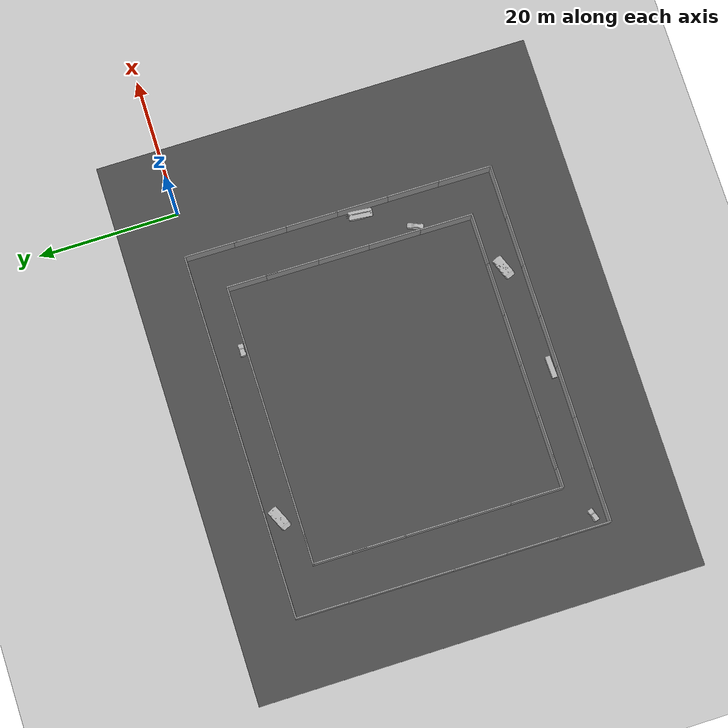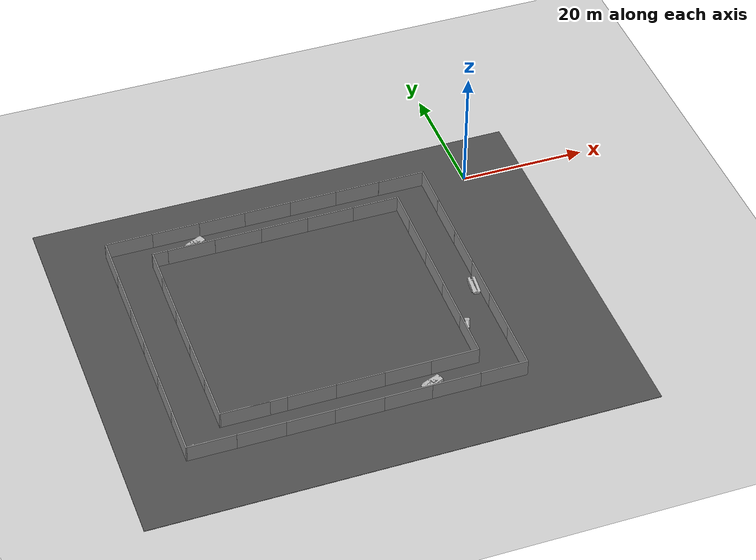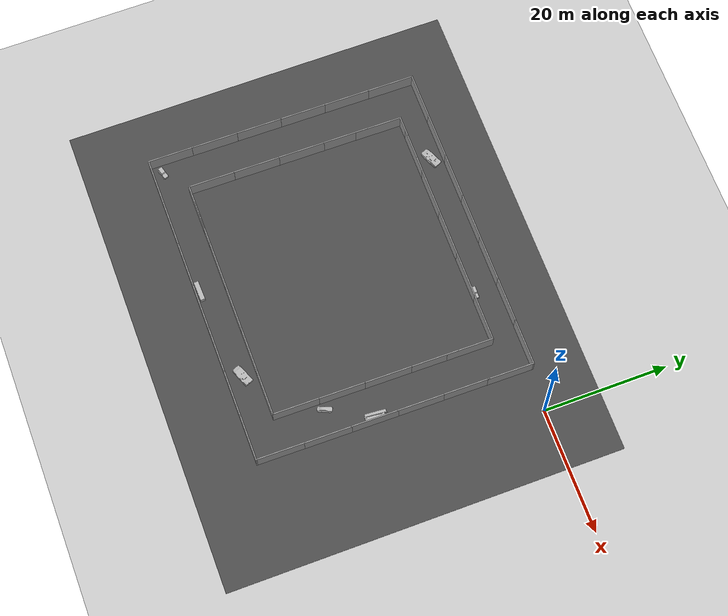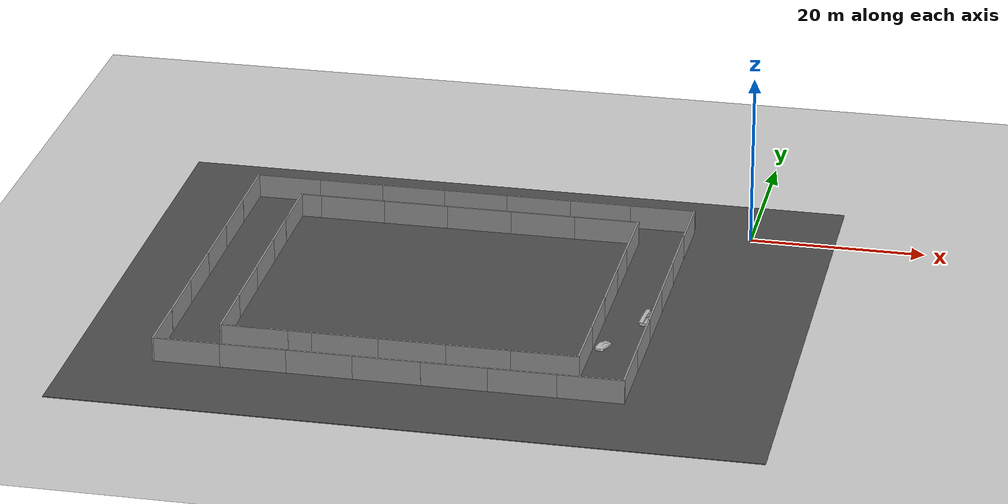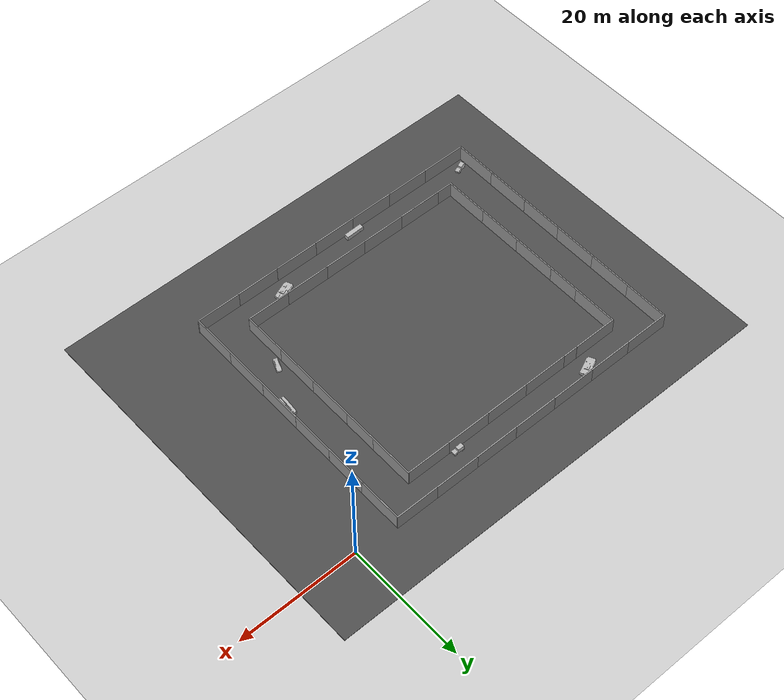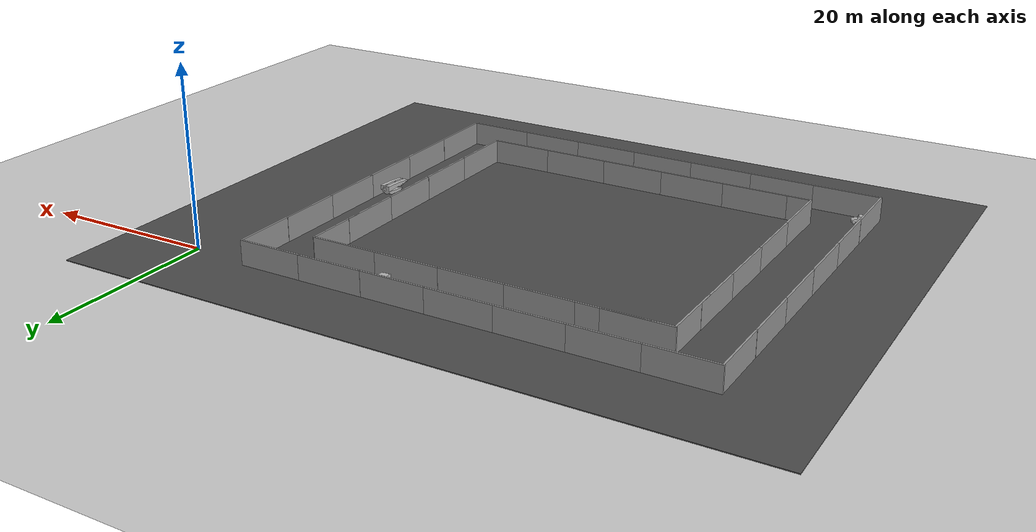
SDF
<sdf version="1.6">
 <world name="default">
  <light name="sun" type="directional">
   <pose>0 0 10 0 -0 0</pose>
   <diffuse>0.8 0.8 0.8 1</diffuse>
   <specular>0.2 0.2 0.2 1</specular>
   <attenuation>
    <range>1000</range>
    <constant>0.9</constant>
    <linear>0.01</linear>
    <quadratic>0.001</quadratic>
   </attenuation>
   <direction>-0.5 0.1 -0.9</direction>
  </light>
  <model name="ground_plane">
   <static>1</static>
   <link name="link">
    <collision name="collision">
     <geometry><plane><normal>0 0 1</normal><size>100 100</size></plane></geometry>
     <surface>
      <contact><collide_bitmask>65535</collide_bitmask></contact>
      <friction><ode><mu>100</mu><mu2>50</mu2></ode></friction>
     </surface>
    </collision>
    <visual name="visual">
     <cast_shadows>0</cast_shadows>
     <geometry><plane><normal>0 0 1</normal><size>100 100</size></plane></geometry>
     <material>
      <script><uri>file://media/materials/scripts/gazebo.material</uri><name>Gazebo/Grey</name></script>
     </material>
    </visual>
   </link>
  </model>
  <gravity>0 0 -9.8</gravity>
  <magnetic_field>6e-06 2.3e-05 -4.2e-05</magnetic_field>
  <atmosphere type="adiabatic"/>
  <physics name="default_physics" default="0" type="ode">
   <max_step_size>0.001</max_step_size>
   <real_time_factor>1</real_time_factor>
   <real_time_update_rate>1000</real_time_update_rate>
  </physics>
  <scene><ambient>0.4 0.4 0.4 1</ambient><background>0.7 0.7 0.7 1</background><shadows>1</shadows></scene>
  <audio><device>default</device></audio>
  <spherical_coordinates>
   <surface_model>EARTH_WGS84</surface_model>
   <latitude_deg>0</latitude_deg>
   <longitude_deg>0</longitude_deg>
   <elevation>0</elevation>
   <heading_deg>0</heading_deg>
  </spherical_coordinates>
  <light name="sun" type="directional">
   <pose>0 0 10 0 -0 0</pose>
   <diffuse>0.8 0.8 0.8 1</diffuse>
   <specular>0.2 0.2 0.2 1</specular>
   <attenuation>
    <range>1000</range>
    <constant>0.9</constant>
    <linear>0.01</linear>
    <quadratic>0.001</quadratic>
   </attenuation>
   <direction>-0.5 0.1 -0.9</direction>
  </light>
  <light name="sun" type="directional">
   <pose>0 0 10 0 -0 0</pose>
   <diffuse>0.8 0.8 0.8 1</diffuse>
   <specular>0.2 0.2 0.2 1</specular>
   <attenuation>
    <range>1000</range>
    <constant>0.9</constant>
    <linear>0.01</linear>
    <quadratic>0.001</quadratic>
   </attenuation>
   <direction>-0.5 0.1 -0.9</direction>
  </light>
  <physics name="default_physics" default="0" type="ode">
   <ode>
    <solver>
     <type>quick</type>
     <iters>10</iters>
     <sor>1</sor>
     <use_dynamic_moi_rescaling>0</use_dynamic_moi_rescaling>
    </solver>
    <constraints>
     <cfm>0</cfm>
     <erp>0.2</erp>
     <contact_max_correcting_vel>100</contact_max_correcting_vel>
     <contact_surface_layer>0.001</contact_surface_layer>
    </constraints>
   </ode>
   <max_step_size>0.004</max_step_size>
   <real_time_factor>1</real_time_factor>
   <real_time_update_rate>250</real_time_update_rate>
  </physics>
  <model name="grey_wall_clone_6_clone_8">
   <static>1</static>
   <link name="link">
    <pose>0 0 1.4 0 -0 0</pose>
    <collision name="collision"><geometry><box><size>7.5 0.2 2.8</size></box></geometry></collision>
    <visual name="visual">
     <cast_shadows>0</cast_shadows>
     <geometry><box><size>7.5 0.2 2.8</size></box></geometry>
     <material>
      <script>
       <uri>model://grey_wall/materials/scripts</uri>
       <uri>model://grey_wall/materials/textures</uri>
       <name>vrc/grey_wall</name>
      </script>
     </material>
    </visual>
   </link>
   <pose>-10.4256 0.797416 0 0 -0 0</pose>
  </model>
  <model name="asphalt_plane">
   <static>1</static>
   <link name="link">
    <collision name="collision"><geometry><box><size>77.647 62.8353 0.1</size></box></geometry></collision>
    <visual name="visual">
     <cast_shadows>0</cast_shadows>
     <geometry><box><size>77.647 62.8353 0.1</size></box></geometry>
     <material>
      <script>
       <uri>model://asphalt_plane/materials/scripts</uri>
       <uri>model://asphalt_plane/materials/textures</uri>
       <name>vrc/asphalt</name>
      </script>
     </material>
    </visual>
   </link>
   <pose>-29.1908 -22.4204 0 0 -0 0</pose>
  </model>
  <model name="grey_wall_clone_6_clone_8_clone">
   <static>1</static>
   <link name="link">
    <pose>0 0 1.4 0 -0 0</pose>
    <collision name="collision"><geometry><box><size>7.5 0.2 2.8</size></box></geometry></collision>
    <visual name="visual">
     <cast_shadows>0</cast_shadows>
     <geometry><box><size>7.5 0.2 2.8</size></box></geometry>
     <material>
      <script>
       <uri>model://grey_wall/materials/scripts</uri>
       <uri>model://grey_wall/materials/textures</uri>
       <name>vrc/grey_wall</name>
      </script>
     </material>
    </visual>
   </link>
   <pose>-17.6869 0.815596 0 0 -0 0</pose>
  </model>
  <model name="grey_wall_clone_6_clone_8_clone_0">
   <static>1</static>
   <link name="link">
    <pose>0 0 1.4 0 -0 0</pose>
    <collision name="collision"><geometry><box><size>7.5 0.2 2.8</size></box></geometry></collision>
    <visual name="visual">
     <cast_shadows>0</cast_shadows>
     <geometry><box><size>7.5 0.2 2.8</size></box></geometry>
     <material>
      <script>
       <uri>model://grey_wall/materials/scripts</uri>
       <uri>model://grey_wall/materials/textures</uri>
       <name>vrc/grey_wall</name>
      </script>
     </material>
    </visual>
   </link>
   <pose>-25.0194 0.805602 0 0 -0 0</pose>
  </model>
  <model name="grey_wall_clone_6_clone_8_clone_1">
   <static>1</static>
   <link name="link">
    <pose>0 0 1.4 0 -0 0</pose>
    <collision name="collision"><geometry><box><size>7.5 0.2 2.8</size></box></geometry></collision>
    <visual name="visual">
     <cast_shadows>0</cast_shadows>
     <geometry><box><size>7.5 0.2 2.8</size></box></geometry>
     <material>
      <script>
       <uri>model://grey_wall/materials/scripts</uri>
       <uri>model://grey_wall/materials/textures</uri>
       <name>vrc/grey_wall</name>
      </script>
     </material>
    </visual>
   </link>
   <pose>-32.4838 0.814762 0 0 -0 0</pose>
  </model>
  <model name="grey_wall_clone_6_clone_8_clone_2">
   <static>1</static>
   <link name="link">
    <pose>0 0 1.4 0 -0 0</pose>
    <collision name="collision"><geometry><box><size>7.5 0.2 2.8</size></box></geometry></collision>
    <visual name="visual">
     <cast_shadows>0</cast_shadows>
     <geometry><box><size>7.5 0.2 2.8</size></box></geometry>
     <material>
      <script>
       <uri>model://grey_wall/materials/scripts</uri>
       <uri>model://grey_wall/materials/textures</uri>
       <name>vrc/grey_wall</name>
      </script>
     </material>
    </visual>
   </link>
   <pose>-39.923 0.810789 0 0 -0 0</pose>
  </model>
  <model name="grey_wall_clone_6_clone_8_clone_3">
   <static>1</static>
   <link name="link">
    <pose>0 0 1.4 0 -0 0</pose>
    <collision name="collision"><geometry><box><size>7.5 0.2 2.8</size></box></geometry></collision>
    <visual name="visual">
     <cast_shadows>0</cast_shadows>
     <geometry><box><size>7.5 0.2 2.8</size></box></geometry>
     <material>
      <script>
       <uri>model://grey_wall/materials/scripts</uri>
       <uri>model://grey_wall/materials/textures</uri>
       <name>vrc/grey_wall</name>
      </script>
     </material>
    </visual>
   </link>
   <pose>-47.2608 0.80925 0 0 -0 0</pose>
  </model>
  <model name="grey_wall_clone_6_clone_8_clone_4">
   <static>1</static>
   <link name="link">
    <pose>0 0 1.4 0 -0 0</pose>
    <collision name="collision"><geometry><box><size>7.5 0.2 2.8</size></box></geometry></collision>
    <visual name="visual">
     <cast_shadows>0</cast_shadows>
     <geometry><box><size>7.5 0.2 2.8</size></box></geometry>
     <material>
      <script>
       <uri>model://grey_wall/materials/scripts</uri>
       <uri>model://grey_wall/materials/textures</uri>
       <name>vrc/grey_wall</name>
      </script>
     </material>
    </visual>
   </link>
   <pose>-54.7381 0.815169 0 0 -0 0</pose>
  </model>
  <model name="grey_wall_clone_6_clone_8_clone_5">
   <static>1</static>
   <link name="link">
    <pose>0 0 1.4 0 -0 0</pose>
    <collision name="collision"><geometry><box><size>7.5 0.2 2.8</size></box></geometry></collision>
    <visual name="visual">
     <cast_shadows>0</cast_shadows>
     <geometry><box><size>7.5 0.2 2.8</size></box></geometry>
     <material>
      <script>
       <uri>model://grey_wall/materials/scripts</uri>
       <uri>model://grey_wall/materials/textures</uri>
       <name>vrc/grey_wall</name>
      </script>
     </material>
    </visual>
   </link>
   <pose>-6.80481 -2.85443 0 0 -0 1.56305</pose>
  </model>
  <model name="grey_wall_clone_6_clone_8_clone_5_clone">
   <static>1</static>
   <link name="link">
    <pose>0 0 1.4 0 -0 0</pose>
    <collision name="collision"><geometry><box><size>7.5 0.2 2.8</size></box></geometry></collision>
    <visual name="visual">
     <cast_shadows>0</cast_shadows>
     <geometry><box><size>7.5 0.2 2.8</size></box></geometry>
     <material>
      <script>
       <uri>model://grey_wall/materials/scripts</uri>
       <uri>model://grey_wall/materials/textures</uri>
       <name>vrc/grey_wall</name>
      </script>
     </material>
    </visual>
   </link>
   <pose>-6.87872 -9.95686 0 0 -0 1.56305</pose>
  </model>
  <model name="grey_wall_clone_6_clone_8_clone_5_clone_0">
   <static>1</static>
   <link name="link">
    <pose>0 0 1.4 0 -0 0</pose>
    <collision name="collision"><geometry><box><size>7.5 0.2 2.8</size></box></geometry></collision>
    <visual name="visual">
     <cast_shadows>0</cast_shadows>
     <geometry><box><size>7.5 0.2 2.8</size></box></geometry>
     <material>
      <script>
       <uri>model://grey_wall/materials/scripts</uri>
       <uri>model://grey_wall/materials/textures</uri>
       <name>vrc/grey_wall</name>
      </script>
     </material>
    </visual>
   </link>
   <pose>-6.9205 -17.348 0 0 -0 1.56305</pose>
  </model>
  <model name="grey_wall_clone_6_clone_8_clone_5_clone_1">
   <static>1</static>
   <link name="link">
    <pose>0 0 1.4 0 -0 0</pose>
    <collision name="collision"><geometry><box><size>7.5 0.2 2.8</size></box></geometry></collision>
    <visual name="visual">
     <cast_shadows>0</cast_shadows>
     <geometry><box><size>7.5 0.2 2.8</size></box></geometry>
     <material>
      <script>
       <uri>model://grey_wall/materials/scripts</uri>
       <uri>model://grey_wall/materials/textures</uri>
       <name>vrc/grey_wall</name>
      </script>
     </material>
    </visual>
   </link>
   <pose>-6.97589 -24.6171 0 0 -0 1.56305</pose>
  </model>
  <model name="grey_wall_clone_6_clone_8_clone_5_clone_2">
   <static>1</static>
   <link name="link">
    <pose>0 0 1.4 0 -0 0</pose>
    <collision name="collision"><geometry><box><size>7.5 0.2 2.8</size></box></geometry></collision>
    <visual name="visual">
     <cast_shadows>0</cast_shadows>
     <geometry><box><size>7.5 0.2 2.8</size></box></geometry>
     <material>
      <script>
       <uri>model://grey_wall/materials/scripts</uri>
       <uri>model://grey_wall/materials/textures</uri>
       <name>vrc/grey_wall</name>
      </script>
     </material>
    </visual>
   </link>
   <pose>-7.02281 -32.0062 0 0 -0 1.56305</pose>
  </model>
  <model name="grey_wall_clone_6_clone_8_clone_5_clone_3">
   <static>1</static>
   <link name="link">
    <pose>0 0 1.4 0 -0 0</pose>
    <collision name="collision"><geometry><box><size>7.5 0.2 2.8</size></box></geometry></collision>
    <visual name="visual">
     <cast_shadows>0</cast_shadows>
     <geometry><box><size>7.5 0.2 2.8</size></box></geometry>
     <material>
      <script>
       <uri>model://grey_wall/materials/scripts</uri>
       <uri>model://grey_wall/materials/textures</uri>
       <name>vrc/grey_wall</name>
      </script>
     </material>
    </visual>
   </link>
   <pose>-7.09384 -39.4607 0 0 -0 1.56305</pose>
  </model>
  <model name="grey_wall_clone_6_clone_8_clone_5_clone_4">
   <static>1</static>
   <link name="link">
    <pose>0 0 1.4 0 -0 0</pose>
    <collision name="collision"><geometry><box><size>7.5 0.2 2.8</size></box></geometry></collision>
    <visual name="visual">
     <cast_shadows>0</cast_shadows>
     <geometry><box><size>7.5 0.2 2.8</size></box></geometry>
     <material>
      <script>
       <uri>model://grey_wall/materials/scripts</uri>
       <uri>model://grey_wall/materials/textures</uri>
       <name>vrc/grey_wall</name>
      </script>
     </material>
    </visual>
   </link>
   <pose>-58.4152 -2.86807 0 0 -0 1.56305</pose>
  </model>
  <model name="grey_wall_clone_6_clone_8_clone_5_clone_5">
   <static>1</static>
   <link name="link">
    <pose>0 0 1.4 0 -0 0</pose>
    <collision name="collision"><geometry><box><size>7.5 0.2 2.8</size></box></geometry></collision>
    <visual name="visual">
     <cast_shadows>0</cast_shadows>
     <geometry><box><size>7.5 0.2 2.8</size></box></geometry>
     <material>
      <script>
       <uri>model://grey_wall/materials/scripts</uri>
       <uri>model://grey_wall/materials/textures</uri>
       <name>vrc/grey_wall</name>
      </script>
     </material>
    </visual>
   </link>
   <pose>-58.4882 -10.223 0 0 -0 1.56305</pose>
  </model>
  <model name="grey_wall_clone_6_clone_8_clone_5_clone_6">
   <static>1</static>
   <link name="link">
    <pose>0 0 1.4 0 -0 0</pose>
    <collision name="collision"><geometry><box><size>7.5 0.2 2.8</size></box></geometry></collision>
    <visual name="visual">
     <cast_shadows>0</cast_shadows>
     <geometry><box><size>7.5 0.2 2.8</size></box></geometry>
     <material>
      <script>
       <uri>model://grey_wall/materials/scripts</uri>
       <uri>model://grey_wall/materials/textures</uri>
       <name>vrc/grey_wall</name>
      </script>
     </material>
    </visual>
   </link>
   <pose>-58.5488 -17.5992 0 0 -0 1.56305</pose>
  </model>
  <model name="grey_wall_clone_6_clone_8_clone_5_clone_7">
   <static>1</static>
   <link name="link">
    <pose>0 0 1.4 0 -0 0</pose>
    <collision name="collision"><geometry><box><size>7.5 0.2 2.8</size></box></geometry></collision>
    <visual name="visual">
     <cast_shadows>0</cast_shadows>
     <geometry><box><size>7.5 0.2 2.8</size></box></geometry>
     <material>
      <script>
       <uri>model://grey_wall/materials/scripts</uri>
       <uri>model://grey_wall/materials/textures</uri>
       <name>vrc/grey_wall</name>
      </script>
     </material>
    </visual>
   </link>
   <pose>-58.6114 -24.9525 0 0 -0 1.56305</pose>
  </model>
  <model name="grey_wall_clone_6_clone_8_clone_5_clone_8">
   <static>1</static>
   <link name="link">
    <pose>0 0 1.4 0 -0 0</pose>
    <collision name="collision"><geometry><box><size>7.5 0.2 2.8</size></box></geometry></collision>
    <visual name="visual">
     <cast_shadows>0</cast_shadows>
     <geometry><box><size>7.5 0.2 2.8</size></box></geometry>
     <material>
      <script>
       <uri>model://grey_wall/materials/scripts</uri>
       <uri>model://grey_wall/materials/textures</uri>
       <name>vrc/grey_wall</name>
      </script>
     </material>
    </visual>
   </link>
   <pose>-58.6615 -32.4003 0 0 -0 1.56305</pose>
  </model>
  <model name="grey_wall_clone_6_clone_8_clone_5_clone_9">
   <static>1</static>
   <link name="link">
    <pose>0 0 1.4 0 -0 0</pose>
    <collision name="collision"><geometry><box><size>7.5 0.2 2.8</size></box></geometry></collision>
    <visual name="visual">
     <cast_shadows>0</cast_shadows>
     <geometry><box><size>7.5 0.2 2.8</size></box></geometry>
     <material>
      <script>
       <uri>model://grey_wall/materials/scripts</uri>
       <uri>model://grey_wall/materials/textures</uri>
       <name>vrc/grey_wall</name>
      </script>
     </material>
    </visual>
   </link>
   <pose>-58.7297 -39.5971 0 0 -0 1.56305</pose>
  </model>
  <model name="grey_wall_clone_6_clone_8_clone_4_clone">
   <static>1</static>
   <link name="link">
    <pose>0 0 1.4 0 -0 0</pose>
    <collision name="collision"><geometry><box><size>7.5 0.2 2.8</size></box></geometry></collision>
    <visual name="visual">
     <cast_shadows>0</cast_shadows>
     <geometry><box><size>7.5 0.2 2.8</size></box></geometry>
     <material>
      <script>
       <uri>model://grey_wall/materials/scripts</uri>
       <uri>model://grey_wall/materials/textures</uri>
       <name>vrc/grey_wall</name>
      </script>
     </material>
    </visual>
   </link>
   <pose>-54.9361 -43.2608 0 0 -0 0</pose>
  </model>
  <model name="grey_wall_clone_6_clone_8_clone_4_clone_0">
   <static>1</static>
   <link name="link">
    <pose>0 0 1.4 0 -0 0</pose>
    <collision name="collision"><geometry><box><size>7.5 0.2 2.8</size></box></geometry></collision>
    <visual name="visual">
     <cast_shadows>0</cast_shadows>
     <geometry><box><size>7.5 0.2 2.8</size></box></geometry>
     <material>
      <script>
       <uri>model://grey_wall/materials/scripts</uri>
       <uri>model://grey_wall/materials/textures</uri>
       <name>vrc/grey_wall</name>
      </script>
     </material>
    </visual>
   </link>
   <pose>-47.5949 -43.2666 0 0 -0 0</pose>
  </model>
  <model name="grey_wall_clone_6_clone_8_clone_4_clone_1">
   <static>1</static>
   <link name="link">
    <pose>0 0 1.4 0 -0 0</pose>
    <collision name="collision"><geometry><box><size>7.5 0.2 2.8</size></box></geometry></collision>
    <visual name="visual">
     <cast_shadows>0</cast_shadows>
     <geometry><box><size>7.5 0.2 2.8</size></box></geometry>
     <material>
      <script>
       <uri>model://grey_wall/materials/scripts</uri>
       <uri>model://grey_wall/materials/textures</uri>
       <name>vrc/grey_wall</name>
      </script>
     </material>
    </visual>
   </link>
   <pose>-40.2373 -43.2818 0 0 -0 0</pose>
  </model>
  <model name="grey_wall_clone_6_clone_8_clone_4_clone_2">
   <static>1</static>
   <link name="link">
    <pose>0 0 1.4 0 -0 0</pose>
    <collision name="collision"><geometry><box><size>7.5 0.2 2.8</size></box></geometry></collision>
    <visual name="visual">
     <cast_shadows>0</cast_shadows>
     <geometry><box><size>7.5 0.2 2.8</size></box></geometry>
     <material>
      <script>
       <uri>model://grey_wall/materials/scripts</uri>
       <uri>model://grey_wall/materials/textures</uri>
       <name>vrc/grey_wall</name>
      </script>
     </material>
    </visual>
   </link>
   <pose>-32.9116 -43.2839 0 0 -0 0</pose>
  </model>
  <model name="grey_wall_clone_6_clone_8_clone_4_clone_3">
   <static>1</static>
   <link name="link">
    <pose>0 0 1.4 0 -0 0</pose>
    <collision name="collision"><geometry><box><size>7.5 0.2 2.8</size></box></geometry></collision>
    <visual name="visual">
     <cast_shadows>0</cast_shadows>
     <geometry><box><size>7.5 0.2 2.8</size></box></geometry>
     <material>
      <script>
       <uri>model://grey_wall/materials/scripts</uri>
       <uri>model://grey_wall/materials/textures</uri>
       <name>vrc/grey_wall</name>
      </script>
     </material>
    </visual>
   </link>
   <pose>-25.4447 -43.2721 0 0 -0 0</pose>
  </model>
  <model name="grey_wall_clone_6_clone_8_clone_4_clone_4">
   <static>1</static>
   <link name="link">
    <pose>0 0 1.4 0 -0 0</pose>
    <collision name="collision"><geometry><box><size>7.5 0.2 2.8</size></box></geometry></collision>
    <visual name="visual">
     <cast_shadows>0</cast_shadows>
     <geometry><box><size>7.5 0.2 2.8</size></box></geometry>
     <material>
      <script>
       <uri>model://grey_wall/materials/scripts</uri>
       <uri>model://grey_wall/materials/textures</uri>
       <name>vrc/grey_wall</name>
      </script>
     </material>
    </visual>
   </link>
   <pose>-18.0915 -43.2752 0 0 -0 0</pose>
  </model>
  <model name="grey_wall_clone_6_clone_8_clone_4_clone_5">
   <static>1</static>
   <link name="link">
    <pose>0 0 1.4 0 -0 0</pose>
    <collision name="collision"><geometry><box><size>7.5 0.2 2.8</size></box></geometry></collision>
    <visual name="visual">
     <cast_shadows>0</cast_shadows>
     <geometry><box><size>7.5 0.2 2.8</size></box></geometry>
     <material>
      <script>
       <uri>model://grey_wall/materials/scripts</uri>
       <uri>model://grey_wall/materials/textures</uri>
       <name>vrc/grey_wall</name>
      </script>
     </material>
    </visual>
   </link>
   <pose>-10.7598 -43.2705 0 0 -0 0</pose>
  </model>
  <model name="grey_wall_clone_6_clone_8_clone_4_clone_5_clone">
   <static>1</static>
   <link name="link">
    <pose>0 0 1.4 0 -0 0</pose>
    <collision name="collision"><geometry><box><size>7.5 0.2 2.8</size></box></geometry></collision>
    <visual name="visual">
     <cast_shadows>0</cast_shadows>
     <geometry><box><size>7.5 0.2 2.8</size></box></geometry>
     <material>
      <script>
       <uri>model://grey_wall/materials/scripts</uri>
       <uri>model://grey_wall/materials/textures</uri>
       <name>vrc/grey_wall</name>
      </script>
     </material>
    </visual>
   </link>
   <pose>-16.5339 -38.6583 0 0 -0 0</pose>
  </model>
  <model name="grey_wall_clone_6_clone_8_clone_4_clone_5_clone_0">
   <static>1</static>
   <link name="link">
    <pose>0 0 1.4 0 -0 0</pose>
    <collision name="collision"><geometry><box><size>7.5 0.2 2.8</size></box></geometry></collision>
    <visual name="visual">
     <cast_shadows>0</cast_shadows>
     <geometry><box><size>7.5 0.2 2.8</size></box></geometry>
     <material>
      <script>
       <uri>model://grey_wall/materials/scripts</uri>
       <uri>model://grey_wall/materials/textures</uri>
       <name>vrc/grey_wall</name>
      </script>
     </material>
    </visual>
   </link>
   <pose>-23.7865 -38.6526 0 0 -0 0</pose>
  </model>
  <model name="grey_wall_clone_6_clone_8_clone_4_clone_5_clone_1">
   <static>1</static>
   <link name="link">
    <pose>0 0 1.4 0 -0 0</pose>
    <collision name="collision"><geometry><box><size>7.5 0.2 2.8</size></box></geometry></collision>
    <visual name="visual">
     <cast_shadows>0</cast_shadows>
     <geometry><box><size>7.5 0.2 2.8</size></box></geometry>
     <material>
      <script>
       <uri>model://grey_wall/materials/scripts</uri>
       <uri>model://grey_wall/materials/textures</uri>
       <name>vrc/grey_wall</name>
      </script>
     </material>
    </visual>
   </link>
   <pose>-31.1523 -38.6568 0 0 -0 0</pose>
  </model>
  <model name="grey_wall_clone_6_clone_8_clone_4_clone_5_clone_2">
   <static>1</static>
   <link name="link">
    <pose>0 0 1.4 0 -0 0</pose>
    <collision name="collision"><geometry><box><size>7.5 0.2 2.8</size></box></geometry></collision>
    <visual name="visual">
     <cast_shadows>0</cast_shadows>
     <geometry><box><size>7.5 0.2 2.8</size></box></geometry>
     <material>
      <script>
       <uri>model://grey_wall/materials/scripts</uri>
       <uri>model://grey_wall/materials/textures</uri>
       <name>vrc/grey_wall</name>
      </script>
     </material>
    </visual>
   </link>
   <pose>-38.5755 -38.6536 0 0 -0 0</pose>
  </model>
  <model name="grey_wall_clone_6_clone_8_clone_4_clone_5_clone_3">
   <static>1</static>
   <link name="link">
    <pose>0 0 1.4 0 -0 0</pose>
    <collision name="collision"><geometry><box><size>7.5 0.2 2.8</size></box></geometry></collision>
    <visual name="visual">
     <cast_shadows>0</cast_shadows>
     <geometry><box><size>7.5 0.2 2.8</size></box></geometry>
     <material>
      <script>
       <uri>model://grey_wall/materials/scripts</uri>
       <uri>model://grey_wall/materials/textures</uri>
       <name>vrc/grey_wall</name>
      </script>
     </material>
    </visual>
   </link>
   <pose>-46.0353 -38.6626 0 0 -0 0</pose>
  </model>
  <model name="grey_wall_clone_6_clone_8_clone_4_clone_5_clone_4">
   <static>1</static>
   <link name="link">
    <pose>0 0 1.4 0 -0 0</pose>
    <collision name="collision"><geometry><box><size>7.5 0.2 2.8</size></box></geometry></collision>
    <visual name="visual">
     <cast_shadows>0</cast_shadows>
     <geometry><box><size>7.5 0.2 2.8</size></box></geometry>
     <material>
      <script>
       <uri>model://grey_wall/materials/scripts</uri>
       <uri>model://grey_wall/materials/textures</uri>
       <name>vrc/grey_wall</name>
      </script>
     </material>
    </visual>
   </link>
   <pose>-48.645 -38.6724 0 0 -0 0</pose>
  </model>
  <model name="grey_wall_clone_6_clone_8_clone_5_clone_3_clone">
   <static>1</static>
   <link name="link">
    <pose>0 0 1.4 0 -0 0</pose>
    <collision name="collision"><geometry><box><size>7.5 0.2 2.8</size></box></geometry></collision>
    <visual name="visual">
     <cast_shadows>0</cast_shadows>
     <geometry><box><size>7.5 0.2 2.8</size></box></geometry>
     <material>
      <script>
       <uri>model://grey_wall/materials/scripts</uri>
       <uri>model://grey_wall/materials/textures</uri>
       <name>vrc/grey_wall</name>
      </script>
     </material>
    </visual>
   </link>
   <pose>-12.8507 -34.9798 0 0 -0 1.56305</pose>
  </model>
  <model name="grey_wall_clone_6_clone_8_clone_5_clone_3_clone_0">
   <static>1</static>
   <link name="link">
    <pose>0 0 1.4 0 -0 0</pose>
    <collision name="collision"><geometry><box><size>7.5 0.2 2.8</size></box></geometry></collision>
    <visual name="visual">
     <cast_shadows>0</cast_shadows>
     <geometry><box><size>7.5 0.2 2.8</size></box></geometry>
     <material>
      <script>
       <uri>model://grey_wall/materials/scripts</uri>
       <uri>model://grey_wall/materials/textures</uri>
       <name>vrc/grey_wall</name>
      </script>
     </material>
    </visual>
   </link>
   <pose>-12.7782 -27.5855 0 0 -0 1.56305</pose>
  </model>
  <model name="grey_wall_clone_6_clone_8_clone_5_clone_3_clone_1">
   <static>1</static>
   <link name="link">
    <pose>0 0 1.4 0 -0 0</pose>
    <collision name="collision"><geometry><box><size>7.5 0.2 2.8</size></box></geometry></collision>
    <visual name="visual">
     <cast_shadows>0</cast_shadows>
     <geometry><box><size>7.5 0.2 2.8</size></box></geometry>
     <material>
      <script>
       <uri>model://grey_wall/materials/scripts</uri>
       <uri>model://grey_wall/materials/textures</uri>
       <name>vrc/grey_wall</name>
      </script>
     </material>
    </visual>
   </link>
   <pose>-12.7134 -20.3193 0 0 -0 1.56305</pose>
  </model>
  <model name="grey_wall_clone_6_clone_8_clone_5_clone_3_clone_2">
   <static>1</static>
   <link name="link">
    <pose>0 0 1.4 0 -0 0</pose>
    <collision name="collision"><geometry><box><size>7.5 0.2 2.8</size></box></geometry></collision>
    <visual name="visual">
     <cast_shadows>0</cast_shadows>
     <geometry><box><size>7.5 0.2 2.8</size></box></geometry>
     <material>
      <script>
       <uri>model://grey_wall/materials/scripts</uri>
       <uri>model://grey_wall/materials/textures</uri>
       <name>vrc/grey_wall</name>
      </script>
     </material>
    </visual>
   </link>
   <pose>-12.6546 -12.8363 0 0 -0 1.56305</pose>
  </model>
  <model name="grey_wall_clone_6_clone_8_clone_5_clone_3_clone_3">
   <static>1</static>
   <link name="link">
    <pose>0 0 1.4 0 -0 0</pose>
    <collision name="collision"><geometry><box><size>7.5 0.2 2.8</size></box></geometry></collision>
    <visual name="visual">
     <cast_shadows>0</cast_shadows>
     <geometry><box><size>7.5 0.2 2.8</size></box></geometry>
     <material>
      <script>
       <uri>model://grey_wall/materials/scripts</uri>
       <uri>model://grey_wall/materials/textures</uri>
       <name>vrc/grey_wall</name>
      </script>
     </material>
    </visual>
   </link>
   <pose>-12.6007 -7.17139 0 0 -0 1.56305</pose>
  </model>
  <model name="grey_wall_clone_6_clone_8_clone_6">
   <static>1</static>
   <link name="link">
    <pose>0 0 1.4 0 -0 0</pose>
    <collision name="collision"><geometry><box><size>7.5 0.2 2.8</size></box></geometry></collision>
    <visual name="visual">
     <cast_shadows>0</cast_shadows>
     <geometry><box><size>7.5 0.2 2.8</size></box></geometry>
     <material>
      <script>
       <uri>model://grey_wall/materials/scripts</uri>
       <uri>model://grey_wall/materials/textures</uri>
       <name>vrc/grey_wall</name>
      </script>
     </material>
    </visual>
   </link>
   <pose>-16.278 -3.51989 0 0 -0 0</pose>
  </model>
  <model name="grey_wall_clone_6_clone_8_clone_7">
   <static>1</static>
   <link name="link">
    <pose>0 0 1.4 0 -0 0</pose>
    <collision name="collision"><geometry><box><size>7.5 0.2 2.8</size></box></geometry></collision>
    <visual name="visual">
     <cast_shadows>0</cast_shadows>
     <geometry><box><size>7.5 0.2 2.8</size></box></geometry>
     <material>
      <script>
       <uri>model://grey_wall/materials/scripts</uri>
       <uri>model://grey_wall/materials/textures</uri>
       <name>vrc/grey_wall</name>
      </script>
     </material>
    </visual>
   </link>
   <pose>-23.6889 -3.52182 0 0 -0 0</pose>
  </model>
  <model name="grey_wall_clone_6_clone_8_clone_8">
   <static>1</static>
   <link name="link">
    <pose>0 0 1.4 0 -0 0</pose>
    <collision name="collision"><geometry><box><size>7.5 0.2 2.8</size></box></geometry></collision>
    <visual name="visual">
     <cast_shadows>0</cast_shadows>
     <geometry><box><size>7.5 0.2 2.8</size></box></geometry>
     <material>
      <script>
       <uri>model://grey_wall/materials/scripts</uri>
       <uri>model://grey_wall/materials/textures</uri>
       <name>vrc/grey_wall</name>
      </script>
     </material>
    </visual>
   </link>
   <pose>-31.1172 -3.5324 0 0 -0 0</pose>
  </model>
  <model name="grey_wall_clone_6_clone_8_clone_9">
   <static>1</static>
   <link name="link">
    <pose>0 0 1.4 0 -0 0</pose>
    <collision name="collision"><geometry><box><size>7.5 0.2 2.8</size></box></geometry></collision>
    <visual name="visual">
     <cast_shadows>0</cast_shadows>
     <geometry><box><size>7.5 0.2 2.8</size></box></geometry>
     <material>
      <script>
       <uri>model://grey_wall/materials/scripts</uri>
       <uri>model://grey_wall/materials/textures</uri>
       <name>vrc/grey_wall</name>
      </script>
     </material>
    </visual>
   </link>
   <pose>-38.57 -3.5306 0 0 -0 0</pose>
  </model>
  <model name="grey_wall_clone_6_clone_8_clone_10">
   <static>1</static>
   <link name="link">
    <pose>0 0 1.4 0 -0 0</pose>
    <collision name="collision"><geometry><box><size>7.5 0.2 2.8</size></box></geometry></collision>
    <visual name="visual">
     <cast_shadows>0</cast_shadows>
     <geometry><box><size>7.5 0.2 2.8</size></box></geometry>
     <material>
      <script>
       <uri>model://grey_wall/materials/scripts</uri>
       <uri>model://grey_wall/materials/textures</uri>
       <name>vrc/grey_wall</name>
      </script>
     </material>
    </visual>
   </link>
   <pose>-46.052 -3.52358 0 0 -0 0</pose>
  </model>
  <model name="grey_wall_clone_6_clone_8_clone_5_clone_6_clone">
   <static>1</static>
   <link name="link">
    <pose>0 0 1.4 0 -0 0</pose>
    <collision name="collision"><geometry><box><size>7.5 0.2 2.8</size></box></geometry></collision>
    <visual name="visual">
     <cast_shadows>0</cast_shadows>
     <geometry><box><size>7.5 0.2 2.8</size></box></geometry>
     <material>
      <script>
       <uri>model://grey_wall/materials/scripts</uri>
       <uri>model://grey_wall/materials/textures</uri>
       <name>vrc/grey_wall</name>
      </script>
     </material>
    </visual>
   </link>
   <pose>-52.4024 -35.0241 0 0 -0 1.56305</pose>
  </model>
  <model name="grey_wall_clone_6_clone_8_clone_5_clone_6_clone_0">
   <static>1</static>
   <link name="link">
    <pose>0 0 1.4 0 -0 0</pose>
    <collision name="collision"><geometry><box><size>7.5 0.2 2.8</size></box></geometry></collision>
    <visual name="visual">
     <cast_shadows>0</cast_shadows>
     <geometry><box><size>7.5 0.2 2.8</size></box></geometry>
     <material>
      <script>
       <uri>model://grey_wall/materials/scripts</uri>
       <uri>model://grey_wall/materials/textures</uri>
       <name>vrc/grey_wall</name>
      </script>
     </material>
    </visual>
   </link>
   <pose>-52.3559 -27.5513 0 0 -0 1.56305</pose>
  </model>
  <model name="grey_wall_clone_6_clone_8_clone_5_clone_6_clone_1">
   <static>1</static>
   <link name="link">
    <pose>0 0 1.4 0 -0 0</pose>
    <collision name="collision"><geometry><box><size>7.5 0.2 2.8</size></box></geometry></collision>
    <visual name="visual">
     <cast_shadows>0</cast_shadows>
     <geometry><box><size>7.5 0.2 2.8</size></box></geometry>
     <material>
      <script>
       <uri>model://grey_wall/materials/scripts</uri>
       <uri>model://grey_wall/materials/textures</uri>
       <name>vrc/grey_wall</name>
      </script>
     </material>
    </visual>
   </link>
   <pose>-52.3099 -20.0913 0 0 -0 1.56305</pose>
  </model>
  <model name="grey_wall_clone_6_clone_8_clone_5_clone_6_clone_2">
   <static>1</static>
   <link name="link">
    <pose>0 0 1.4 0 -0 0</pose>
    <collision name="collision"><geometry><box><size>7.5 0.2 2.8</size></box></geometry></collision>
    <visual name="visual">
     <cast_shadows>0</cast_shadows>
     <geometry><box><size>7.5 0.2 2.8</size></box></geometry>
     <material>
      <script>
       <uri>model://grey_wall/materials/scripts</uri>
       <uri>model://grey_wall/materials/textures</uri>
       <name>vrc/grey_wall</name>
      </script>
     </material>
    </visual>
   </link>
   <pose>-52.2596 -12.7609 0 0 -0 1.56305</pose>
  </model>
  <model name="grey_wall_clone_6_clone_8_clone_5_clone_6_clone_3">
   <static>1</static>
   <link name="link">
    <pose>0 0 1.4 0 -0 0</pose>
    <collision name="collision"><geometry><box><size>7.5 0.2 2.8</size></box></geometry></collision>
    <visual name="visual">
     <cast_shadows>0</cast_shadows>
     <geometry><box><size>7.5 0.2 2.8</size></box></geometry>
     <material>
      <script>
       <uri>model://grey_wall/materials/scripts</uri>
       <uri>model://grey_wall/materials/textures</uri>
       <name>vrc/grey_wall</name>
      </script>
     </material>
    </visual>
   </link>
   <pose>-52.2028 -7.33068 0 0 -0 1.56305</pose>
  </model>
  <model name="grey_wall_clone_6_clone_8_clone_10_clone">
   <static>1</static>
   <link name="link">
    <pose>0 0 1.4 0 -0 0</pose>
    <collision name="collision"><geometry><box><size>7.5 0.2 2.8</size></box></geometry></collision>
    <visual name="visual">
     <cast_shadows>0</cast_shadows>
     <geometry><box><size>7.5 0.2 2.8</size></box></geometry>
     <material>
      <script>
       <uri>model://grey_wall/materials/scripts</uri>
       <uri>model://grey_wall/materials/textures</uri>
       <name>vrc/grey_wall</name>
      </script>
     </material>
    </visual>
   </link>
   <pose>-48.5505 -3.51917 0 0 -0 0</pose>
  </model>
  <model name="k1avlb">
   <static>1</static>
   <link name="link">
    <inertial>
     <mass>100</mass>
     <inertia><ixx>1</ixx><ixy>0</ixy><ixz>0</ixz><iyy>1</iyy><iyz>0</iyz><izz>1</izz></inertia>
    </inertial>
    <collision name="collision">
     <geometry>
      <mesh><scale>0.3 0.3 0.3</scale><uri>model://rotem_gw/k1avlb/meshes/k1avlb.obj</uri></mesh>
     </geometry>
     <surface><contact><ode><max_vel>0.1</max_vel><min_depth>0.001</min_depth></ode></contact></surface>
    </collision>
    <visual name="visual">
     <pose>0 0 0 1.5708 -0 0</pose>
     <geometry>
      <mesh><scale>0.3 0.3 0.3</scale><uri>model://rotem_gw/k1avlb/meshes/k1avlb.obj</uri></mesh>
     </geometry>
    </visual>
   </link>
   <pose>-7.8063 -23.8111 0 0 -0 3.04943</pose>
  </model>
  <model name="car_0">
   <static>1</static>
   <link name="link">
    <inertial>
     <mass>100</mass>
     <inertia><ixx>1</ixx><ixy>0</ixy><ixz>0</ixz><iyy>1</iyy><iyz>0</iyz><izz>1</izz></inertia>
    </inertial>
    <collision name="collision">
     <geometry><mesh><scale>0.5 0.5 0.5</scale><uri>model://rotem_gw/car/meshes/car.obj</uri></mesh></geometry>
     <surface><contact><ode><max_vel>0.1</max_vel><min_depth>0.001</min_depth></ode></contact></surface>
    </collision>
    <visual name="visual">
     <pose>0 0 0 1.5708 -0 0</pose>
     <geometry><mesh><scale>0.5 0.5 0.5</scale><uri>model://rotem_gw/car/meshes/car.obj</uri></mesh></geometry>
    </visual>
   </link>
   <pose>-11.604 -30.9403 0.12907 0 0 -0.386755</pose>
  </model>
  <model name="k131">
   <static>1</static>
   <link name="link">
    <inertial>
     <mass>100</mass>
     <inertia><ixx>1</ixx><ixy>0</ixy><ixz>0</ixz><iyy>1</iyy><iyz>0</iyz><izz>1</izz></inertia>
    </inertial>
    <collision name="collision">
     <geometry><mesh><scale>0.5 0.5 0.5</scale><uri>model://rotem_gw/k131/meshes/k131.obj</uri></mesh></geometry>
     <surface><contact><ode><max_vel>0.1</max_vel><min_depth>0.001</min_depth></ode></contact></surface>
    </collision>
    <visual name="visual">
     <pose>0 0 0 1.5708 -0 0</pose>
     <geometry><mesh><scale>0.5 0.5 0.5</scale><uri>model://rotem_gw/k131/meshes/k131.obj</uri></mesh></geometry>
    </visual>
   </link>
   <pose>-21.1855 -2.91845 0.075056 0 0 -1.58471</pose>
  </model>
  <model name="bmp1">
   <static>1</static>
   <link name="link">
    <inertial>
     <mass>100</mass>
     <inertia><ixx>1</ixx><ixy>0</ixy><ixz>0</ixz><iyy>1</iyy><iyz>0</iyz><izz>1</izz></inertia>
    </inertial>
    <collision name="collision">
     <geometry><mesh><scale>0.5 0.5 0.5</scale><uri>model://rotem_gw/bmp1/meshes/bmp1.obj</uri></mesh></geometry>
     <surface><contact><ode><max_vel>0.1</max_vel><min_depth>0.001</min_depth></ode></contact></surface>
    </collision>
    <visual name="visual">
     <pose>0 0 0 1.5708 -0 0</pose>
     <geometry><mesh><scale>0.5 0.5 0.5</scale><uri>model://rotem_gw/bmp1/meshes/bmp1.obj</uri></mesh></geometry>
    </visual>
   </link>
   <pose>-44.8765 -1.0126 0 0 -0 1.99553</pose>
  </model>
  <model name="bus">
   <static>1</static>
   <link name="link">
    <inertial>
     <mass>100</mass>
     <inertia><ixx>1</ixx><ixy>0</ixy><ixz>0</ixz><iyy>1</iyy><iyz>0</iyz><izz>1</izz></inertia>
    </inertial>
    <collision name="collision">
     <geometry><mesh><scale>0.3 0.3 0.3</scale><uri>model://rotem_gw/bus/meshes/bus.obj</uri></mesh></geometry>
     <surface><contact><ode><max_vel>0.1</max_vel><min_depth>0.001</min_depth></ode></contact></surface>
    </collision>
    <visual name="visual">
     <pose>0 0 0 1.5708 -0 0</pose>
     <geometry><mesh><scale>0.3 0.3 0.3</scale><uri>model://rotem_gw/bus/meshes/bus.obj</uri></mesh></geometry>
    </visual>
   </link>
   <pose>-36.1451 -42.5933 0 0 0 -1.54236</pose>
  </model>
  <model name="bmp1_0">
   <static>1</static>
   <link name="link">
    <inertial>
     <mass>100</mass>
     <inertia><ixx>1</ixx><ixy>0</ixy><ixz>0</ixz><iyy>1</iyy><iyz>0</iyz><izz>1</izz></inertia>
    </inertial>
    <collision name="collision">
     <geometry><mesh><scale>0.5 0.5 0.5</scale><uri>model://rotem_gw/bmp1/meshes/bmp1.obj</uri></mesh></geometry>
     <surface><contact><ode><max_vel>0.1</max_vel><min_depth>0.001</min_depth></ode></contact></surface>
    </collision>
    <visual name="visual">
     <pose>0 0 0 1.5708 -0 0</pose>
     <geometry><mesh><scale>0.5 0.5 0.5</scale><uri>model://rotem_gw/bmp1/meshes/bmp1.obj</uri></mesh></geometry>
    </visual>
   </link>
   <pose>-20.9484 -40.7829 0 0 -0 1.94617</pose>
  </model>
  <model name="k131_0">
   <static>1</static>
   <link name="link">
    <inertial>
     <mass>100</mass>
     <inertia><ixx>1</ixx><ixy>0</ixy><ixz>0</ixz><iyy>1</iyy><iyz>0</iyz><izz>1</izz></inertia>
    </inertial>
    <collision name="collision">
     <geometry><mesh><scale>0.5 0.5 0.5</scale><uri>model://rotem_gw/k131/meshes/k131.obj</uri></mesh></geometry>
     <surface><contact><ode><max_vel>0.1</max_vel><min_depth>0.001</min_depth></ode></contact></surface>
    </collision>
    <visual name="visual">
     <pose>0 0 0 1.5708 -0 0</pose>
     <geometry><mesh><scale>0.5 0.5 0.5</scale><uri>model://rotem_gw/k131/meshes/k131.obj</uri></mesh></geometry>
    </visual>
   </link>
   <pose>-57.1308 -41.6393 0.048355 0 0 -1.26453</pose>
  </model>
 </world>
</sdf>
